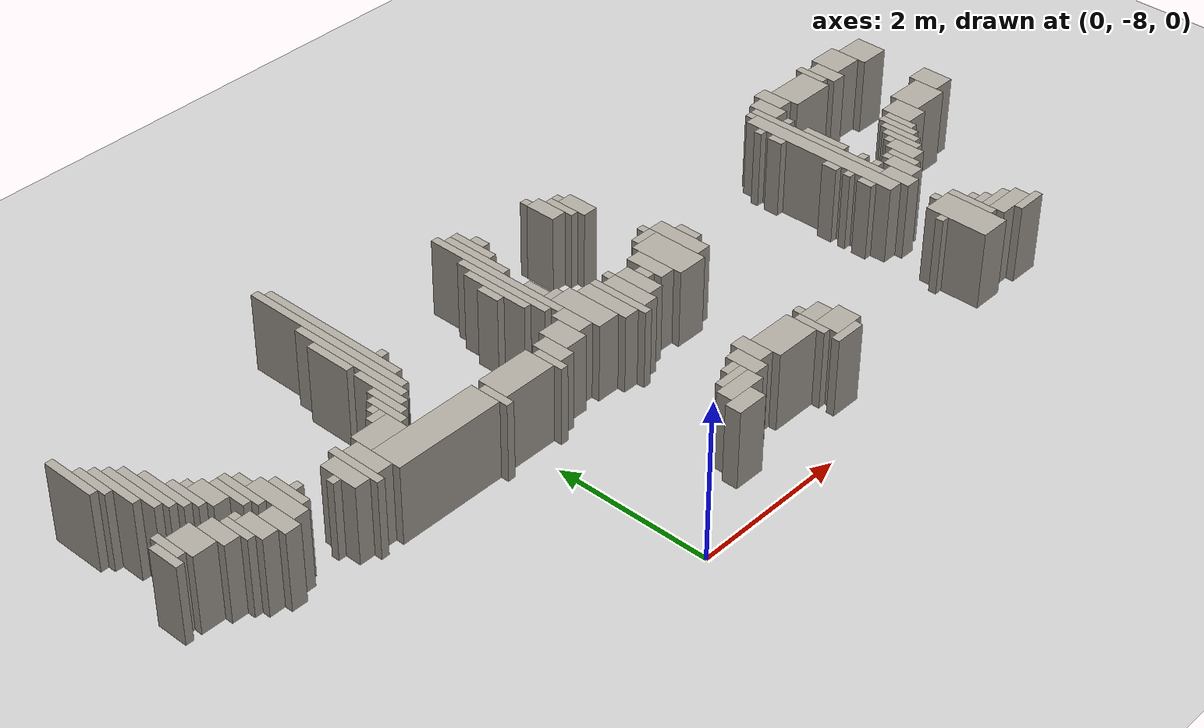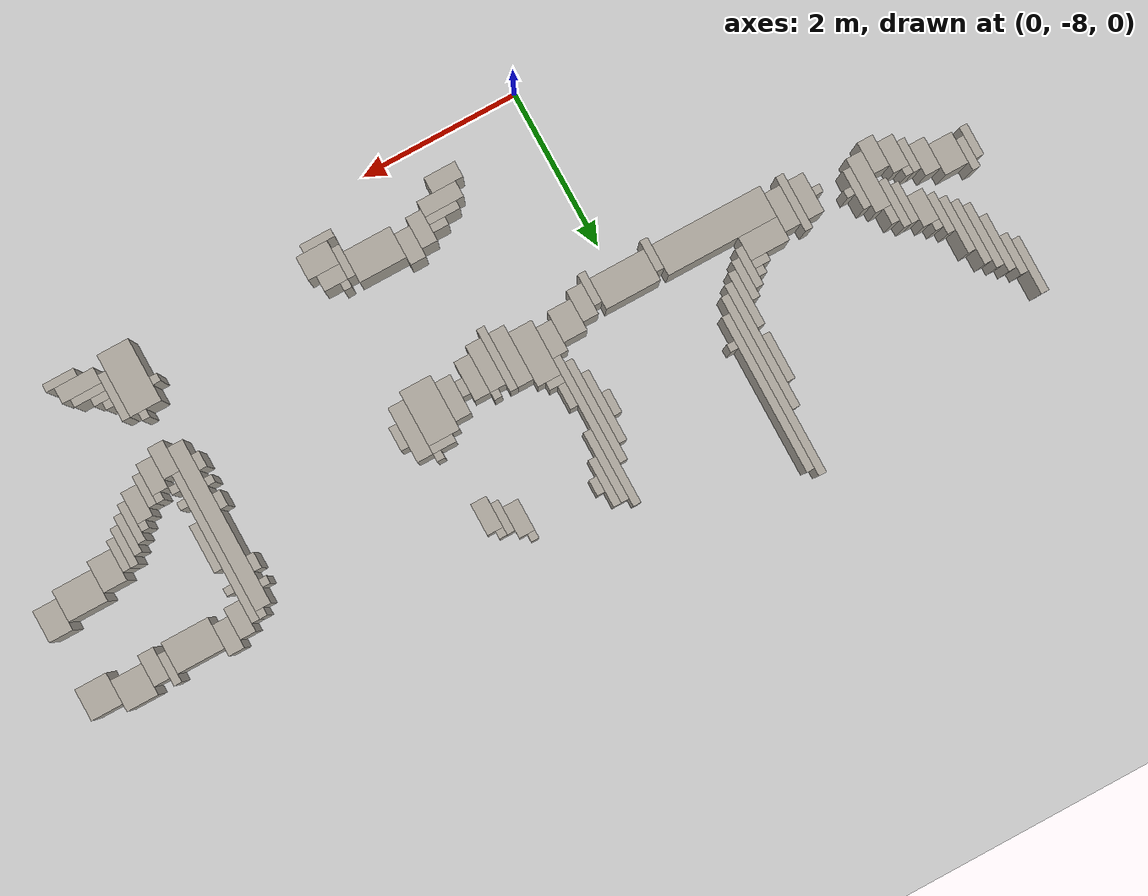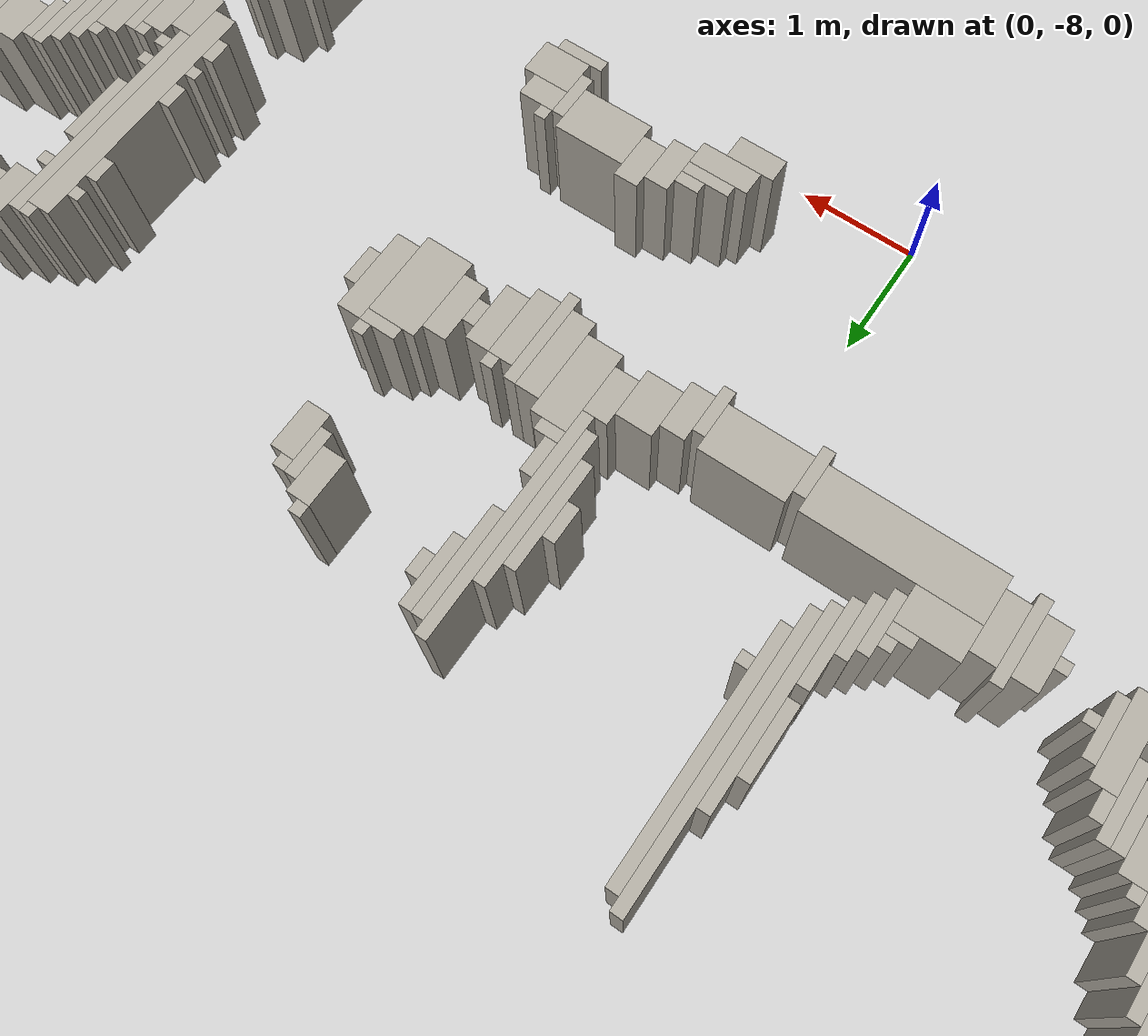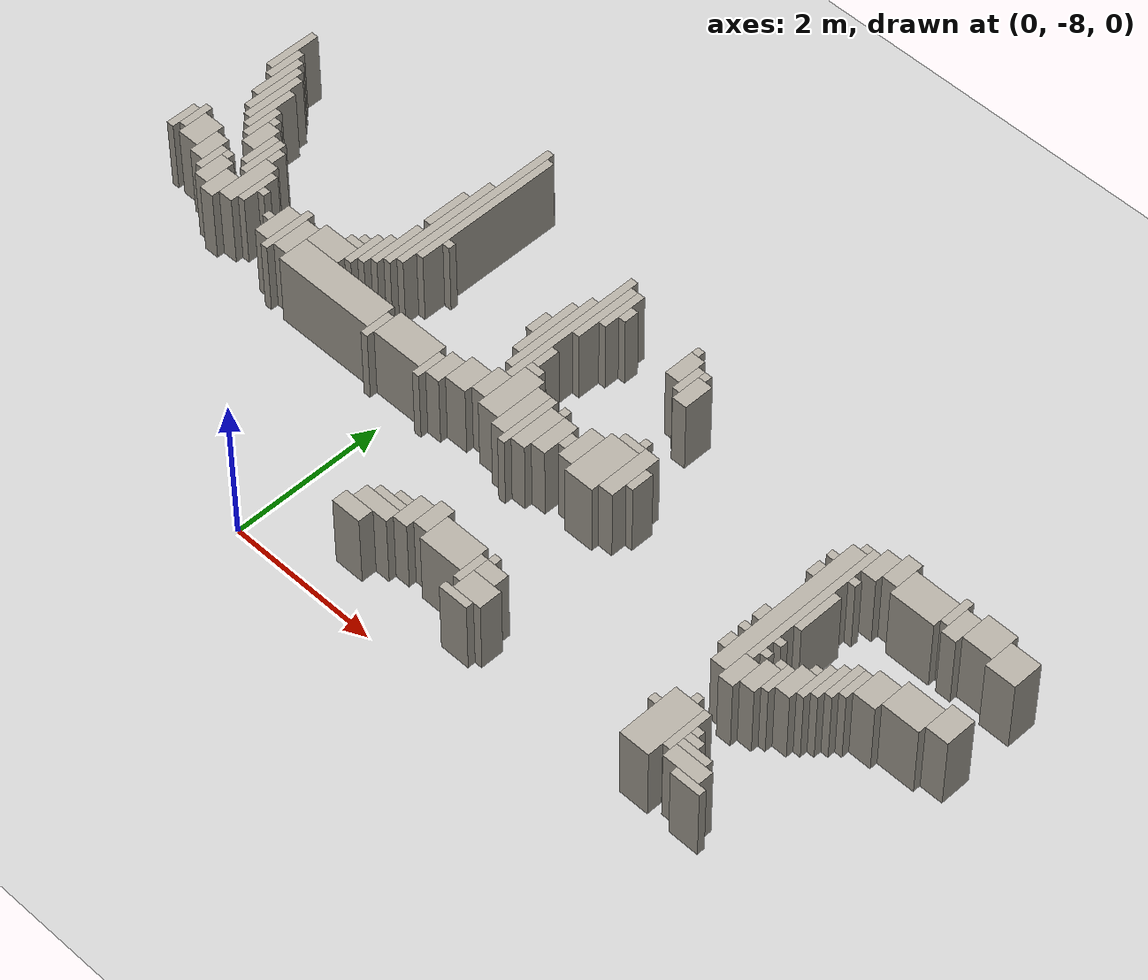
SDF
<sdf version="1.6">
 <world name="willow_office">
  <include><uri>model://sun</uri></include>
  <include><uri>model://ground_plane</uri></include>
  <model name="willow_office_walls">
   <static>true</static>
   <link name="w0007">
    <pose>1.215 -7.438 0.500 0 0 0</pose>
    <collision name="c"><geometry><box><size>0.400 0.200 1.000</size></box></geometry></collision>
    <visual name="v">
     <geometry><box><size>0.400 0.200 1.000</size></box></geometry>
     <material><ambient>0.68 0.66 0.62 1</ambient><diffuse>0.68 0.66 0.62 1</diffuse></material>
    </visual>
   </link>
   <link name="w0008">
    <pose>2.815 -7.488 0.500 0 0 0</pose>
    <collision name="c"><geometry><box><size>0.400 0.100 1.000</size></box></geometry></collision>
    <visual name="v">
     <geometry><box><size>0.400 0.100 1.000</size></box></geometry>
     <material><ambient>0.68 0.66 0.62 1</ambient><diffuse>0.68 0.66 0.62 1</diffuse></material>
    </visual>
   </link>
   <link name="w0009">
    <pose>5.415 -7.138 0.500 0 0 0</pose>
    <collision name="c"><geometry><box><size>0.400 0.800 1.000</size></box></geometry></collision>
    <visual name="v">
     <geometry><box><size>0.400 0.800 1.000</size></box></geometry>
     <material><ambient>0.68 0.66 0.62 1</ambient><diffuse>0.68 0.66 0.62 1</diffuse></material>
    </visual>
   </link>
   <link name="w0010">
    <pose>6.115 -7.488 0.500 0 0 0</pose>
    <collision name="c"><geometry><box><size>0.400 0.100 1.000</size></box></geometry></collision>
    <visual name="v">
     <geometry><box><size>0.400 0.100 1.000</size></box></geometry>
     <material><ambient>0.68 0.66 0.62 1</ambient><diffuse>0.68 0.66 0.62 1</diffuse></material>
    </visual>
   </link>
   <link name="w0016">
    <pose>2.915 -7.288 0.500 0 0 0</pose>
    <collision name="c"><geometry><box><size>0.400 0.300 1.000</size></box></geometry></collision>
    <visual name="v">
     <geometry><box><size>0.400 0.300 1.000</size></box></geometry>
     <material><ambient>0.68 0.66 0.62 1</ambient><diffuse>0.68 0.66 0.62 1</diffuse></material>
    </visual>
   </link>
   <link name="w0017">
    <pose>5.965 -7.338 0.500 0 0 0</pose>
    <collision name="c"><geometry><box><size>0.500 0.200 1.000</size></box></geometry></collision>
    <visual name="v">
     <geometry><box><size>0.500 0.200 1.000</size></box></geometry>
     <material><ambient>0.68 0.66 0.62 1</ambient><diffuse>0.68 0.66 0.62 1</diffuse></material>
    </visual>
   </link>
   <link name="w0025">
    <pose>1.365 -7.238 0.500 0 0 0</pose>
    <collision name="c"><geometry><box><size>0.500 0.200 1.000</size></box></geometry></collision>
    <visual name="v">
     <geometry><box><size>0.500 0.200 1.000</size></box></geometry>
     <material><ambient>0.68 0.66 0.62 1</ambient><diffuse>0.68 0.66 0.62 1</diffuse></material>
    </visual>
   </link>
   <link name="w0026">
    <pose>2.665 -7.138 0.500 0 0 0</pose>
    <collision name="c"><geometry><box><size>0.100 0.400 1.000</size></box></geometry></collision>
    <visual name="v">
     <geometry><box><size>0.100 0.400 1.000</size></box></geometry>
     <material><ambient>0.68 0.66 0.62 1</ambient><diffuse>0.68 0.66 0.62 1</diffuse></material>
    </visual>
   </link>
   <link name="w0027">
    <pose>5.665 -7.038 0.500 0 0 0</pose>
    <collision name="c"><geometry><box><size>0.100 0.600 1.000</size></box></geometry></collision>
    <visual name="v">
     <geometry><box><size>0.100 0.600 1.000</size></box></geometry>
     <material><ambient>0.68 0.66 0.62 1</ambient><diffuse>0.68 0.66 0.62 1</diffuse></material>
    </visual>
   </link>
   <link name="w0033">
    <pose>1.715 -7.038 0.500 0 0 0</pose>
    <collision name="c"><geometry><box><size>0.200 0.400 1.000</size></box></geometry></collision>
    <visual name="v">
     <geometry><box><size>0.200 0.400 1.000</size></box></geometry>
     <material><ambient>0.68 0.66 0.62 1</ambient><diffuse>0.68 0.66 0.62 1</diffuse></material>
    </visual>
   </link>
   <link name="w0034">
    <pose>2.315 -7.038 0.500 0 0 0</pose>
    <collision name="c"><geometry><box><size>0.600 0.400 1.000</size></box></geometry></collision>
    <visual name="v">
     <geometry><box><size>0.600 0.400 1.000</size></box></geometry>
     <material><ambient>0.68 0.66 0.62 1</ambient><diffuse>0.68 0.66 0.62 1</diffuse></material>
    </visual>
   </link>
   <link name="w0035">
    <pose>5.915 -7.188 0.500 0 0 0</pose>
    <collision name="c"><geometry><box><size>0.400 0.100 1.000</size></box></geometry></collision>
    <visual name="v">
     <geometry><box><size>0.400 0.100 1.000</size></box></geometry>
     <material><ambient>0.68 0.66 0.62 1</ambient><diffuse>0.68 0.66 0.62 1</diffuse></material>
    </visual>
   </link>
   <link name="w0042">
    <pose>1.415 -7.088 0.500 0 0 0</pose>
    <collision name="c"><geometry><box><size>0.400 0.100 1.000</size></box></geometry></collision>
    <visual name="v">
     <geometry><box><size>0.400 0.100 1.000</size></box></geometry>
     <material><ambient>0.68 0.66 0.62 1</ambient><diffuse>0.68 0.66 0.62 1</diffuse></material>
    </visual>
   </link>
   <link name="w0043">
    <pose>1.915 -6.938 0.500 0 0 0</pose>
    <collision name="c"><geometry><box><size>0.200 0.400 1.000</size></box></geometry></collision>
    <visual name="v">
     <geometry><box><size>0.200 0.400 1.000</size></box></geometry>
     <material><ambient>0.68 0.66 0.62 1</ambient><diffuse>0.68 0.66 0.62 1</diffuse></material>
    </visual>
   </link>
   <link name="w0044">
    <pose>2.865 -7.038 0.500 0 0 0</pose>
    <collision name="c"><geometry><box><size>0.300 0.200 1.000</size></box></geometry></collision>
    <visual name="v">
     <geometry><box><size>0.300 0.200 1.000</size></box></geometry>
     <material><ambient>0.68 0.66 0.62 1</ambient><diffuse>0.68 0.66 0.62 1</diffuse></material>
    </visual>
   </link>
   <link name="w0045">
    <pose>5.815 -7.088 0.500 0 0 0</pose>
    <collision name="c"><geometry><box><size>0.200 0.100 1.000</size></box></geometry></collision>
    <visual name="v">
     <geometry><box><size>0.200 0.100 1.000</size></box></geometry>
     <material><ambient>0.68 0.66 0.62 1</ambient><diffuse>0.68 0.66 0.62 1</diffuse></material>
    </visual>
   </link>
   <link name="w0051">
    <pose>1.515 -6.988 0.500 0 0 0</pose>
    <collision name="c"><geometry><box><size>0.200 0.100 1.000</size></box></geometry></collision>
    <visual name="v">
     <geometry><box><size>0.200 0.100 1.000</size></box></geometry>
     <material><ambient>0.68 0.66 0.62 1</ambient><diffuse>0.68 0.66 0.62 1</diffuse></material>
    </visual>
   </link>
   <link name="w0052">
    <pose>5.165 -6.988 0.500 0 0 0</pose>
    <collision name="c"><geometry><box><size>0.100 0.100 1.000</size></box></geometry></collision>
    <visual name="v">
     <geometry><box><size>0.100 0.100 1.000</size></box></geometry>
     <material><ambient>0.68 0.66 0.62 1</ambient><diffuse>0.68 0.66 0.62 1</diffuse></material>
    </visual>
   </link>
   <link name="w0053">
    <pose>5.765 -6.988 0.500 0 0 0</pose>
    <collision name="c"><geometry><box><size>0.100 0.100 1.000</size></box></geometry></collision>
    <visual name="v">
     <geometry><box><size>0.100 0.100 1.000</size></box></geometry>
     <material><ambient>0.68 0.66 0.62 1</ambient><diffuse>0.68 0.66 0.62 1</diffuse></material>
    </visual>
   </link>
   <link name="w0058">
    <pose>2.765 -6.888 0.500 0 0 0</pose>
    <collision name="c"><geometry><box><size>0.100 0.100 1.000</size></box></geometry></collision>
    <visual name="v">
     <geometry><box><size>0.100 0.100 1.000</size></box></geometry>
     <material><ambient>0.68 0.66 0.62 1</ambient><diffuse>0.68 0.66 0.62 1</diffuse></material>
    </visual>
   </link>
   <link name="w0063">
    <pose>5.465 -6.688 0.500 0 0 0</pose>
    <collision name="c"><geometry><box><size>0.100 0.100 1.000</size></box></geometry></collision>
    <visual name="v">
     <geometry><box><size>0.100 0.100 1.000</size></box></geometry>
     <material><ambient>0.68 0.66 0.62 1</ambient><diffuse>0.68 0.66 0.62 1</diffuse></material>
    </visual>
   </link>
   <link name="w0071">
    <pose>5.515 -6.138 0.500 0 0 0</pose>
    <collision name="c"><geometry><box><size>0.200 0.400 1.000</size></box></geometry></collision>
    <visual name="v">
     <geometry><box><size>0.200 0.400 1.000</size></box></geometry>
     <material><ambient>0.68 0.66 0.62 1</ambient><diffuse>0.68 0.66 0.62 1</diffuse></material>
    </visual>
   </link>
   <link name="w0072">
    <pose>5.315 -5.188 0.500 0 0 0</pose>
    <collision name="c"><geometry><box><size>0.200 2.100 1.000</size></box></geometry></collision>
    <visual name="v">
     <geometry><box><size>0.200 2.100 1.000</size></box></geometry>
     <material><ambient>0.68 0.66 0.62 1</ambient><diffuse>0.68 0.66 0.62 1</diffuse></material>
    </visual>
   </link>
   <link name="w0073">
    <pose>5.715 -6.038 0.500 0 0 0</pose>
    <collision name="c"><geometry><box><size>0.200 0.400 1.000</size></box></geometry></collision>
    <visual name="v">
     <geometry><box><size>0.200 0.400 1.000</size></box></geometry>
     <material><ambient>0.68 0.66 0.62 1</ambient><diffuse>0.68 0.66 0.62 1</diffuse></material>
    </visual>
   </link>
   <link name="w0076">
    <pose>5.865 -5.938 0.500 0 0 0</pose>
    <collision name="c"><geometry><box><size>0.100 0.400 1.000</size></box></geometry></collision>
    <visual name="v">
     <geometry><box><size>0.100 0.400 1.000</size></box></geometry>
     <material><ambient>0.68 0.66 0.62 1</ambient><diffuse>0.68 0.66 0.62 1</diffuse></material>
    </visual>
   </link>
   <link name="w0079">
    <pose>5.165 -5.938 0.500 0 0 0</pose>
    <collision name="c"><geometry><box><size>0.100 0.200 1.000</size></box></geometry></collision>
    <visual name="v">
     <geometry><box><size>0.100 0.200 1.000</size></box></geometry>
     <material><ambient>0.68 0.66 0.62 1</ambient><diffuse>0.68 0.66 0.62 1</diffuse></material>
    </visual>
   </link>
   <link name="w0080">
    <pose>6.015 -5.838 0.500 0 0 0</pose>
    <collision name="c"><geometry><box><size>0.200 0.400 1.000</size></box></geometry></collision>
    <visual name="v">
     <geometry><box><size>0.200 0.400 1.000</size></box></geometry>
     <material><ambient>0.68 0.66 0.62 1</ambient><diffuse>0.68 0.66 0.62 1</diffuse></material>
    </visual>
   </link>
   <link name="w0081">
    <pose>5.465 -4.988 0.500 0 0 0</pose>
    <collision name="c"><geometry><box><size>0.100 1.900 1.000</size></box></geometry></collision>
    <visual name="v">
     <geometry><box><size>0.100 1.900 1.000</size></box></geometry>
     <material><ambient>0.68 0.66 0.62 1</ambient><diffuse>0.68 0.66 0.62 1</diffuse></material>
    </visual>
   </link>
   <link name="w0082">
    <pose>6.165 -5.688 0.500 0 0 0</pose>
    <collision name="c"><geometry><box><size>0.100 0.500 1.000</size></box></geometry></collision>
    <visual name="v">
     <geometry><box><size>0.100 0.500 1.000</size></box></geometry>
     <material><ambient>0.68 0.66 0.62 1</ambient><diffuse>0.68 0.66 0.62 1</diffuse></material>
    </visual>
   </link>
   <link name="w0086">
    <pose>5.565 -5.788 0.500 0 0 0</pose>
    <collision name="c"><geometry><box><size>0.100 0.100 1.000</size></box></geometry></collision>
    <visual name="v">
     <geometry><box><size>0.100 0.100 1.000</size></box></geometry>
     <material><ambient>0.68 0.66 0.62 1</ambient><diffuse>0.68 0.66 0.62 1</diffuse></material>
    </visual>
   </link>
   <link name="w0087">
    <pose>5.765 -5.788 0.500 0 0 0</pose>
    <collision name="c"><geometry><box><size>0.100 0.100 1.000</size></box></geometry></collision>
    <visual name="v">
     <geometry><box><size>0.100 0.100 1.000</size></box></geometry>
     <material><ambient>0.68 0.66 0.62 1</ambient><diffuse>0.68 0.66 0.62 1</diffuse></material>
    </visual>
   </link>
   <link name="w0088">
    <pose>6.265 -5.588 0.500 0 0 0</pose>
    <collision name="c"><geometry><box><size>0.100 0.500 1.000</size></box></geometry></collision>
    <visual name="v">
     <geometry><box><size>0.100 0.500 1.000</size></box></geometry>
     <material><ambient>0.68 0.66 0.62 1</ambient><diffuse>0.68 0.66 0.62 1</diffuse></material>
    </visual>
   </link>
   <link name="w0091">
    <pose>-0.435 -5.538 0.500 0 0 0</pose>
    <collision name="c"><geometry><box><size>0.100 0.400 1.000</size></box></geometry></collision>
    <visual name="v">
     <geometry><box><size>0.100 0.400 1.000</size></box></geometry>
     <material><ambient>0.68 0.66 0.62 1</ambient><diffuse>0.68 0.66 0.62 1</diffuse></material>
    </visual>
   </link>
   <link name="w0092">
    <pose>0.365 -5.538 0.500 0 0 0</pose>
    <collision name="c"><geometry><box><size>0.100 0.400 1.000</size></box></geometry></collision>
    <visual name="v">
     <geometry><box><size>0.100 0.400 1.000</size></box></geometry>
     <material><ambient>0.68 0.66 0.62 1</ambient><diffuse>0.68 0.66 0.62 1</diffuse></material>
    </visual>
   </link>
   <link name="w0093">
    <pose>1.665 -5.338 0.500 0 0 0</pose>
    <collision name="c"><geometry><box><size>0.100 0.800 1.000</size></box></geometry></collision>
    <visual name="v">
     <geometry><box><size>0.100 0.800 1.000</size></box></geometry>
     <material><ambient>0.68 0.66 0.62 1</ambient><diffuse>0.68 0.66 0.62 1</diffuse></material>
    </visual>
   </link>
   <link name="w0094">
    <pose>5.165 -5.688 0.500 0 0 0</pose>
    <collision name="c"><geometry><box><size>0.100 0.100 1.000</size></box></geometry></collision>
    <visual name="v">
     <geometry><box><size>0.100 0.100 1.000</size></box></geometry>
     <material><ambient>0.68 0.66 0.62 1</ambient><diffuse>0.68 0.66 0.62 1</diffuse></material>
    </visual>
   </link>
   <link name="w0095">
    <pose>6.365 -5.488 0.500 0 0 0</pose>
    <collision name="c"><geometry><box><size>0.100 0.500 1.000</size></box></geometry></collision>
    <visual name="v">
     <geometry><box><size>0.100 0.500 1.000</size></box></geometry>
     <material><ambient>0.68 0.66 0.62 1</ambient><diffuse>0.68 0.66 0.62 1</diffuse></material>
    </visual>
   </link>
   <link name="w0097">
    <pose>-2.135 -5.288 0.500 0 0 0</pose>
    <collision name="c"><geometry><box><size>0.100 0.700 1.000</size></box></geometry></collision>
    <visual name="v">
     <geometry><box><size>0.100 0.700 1.000</size></box></geometry>
     <material><ambient>0.68 0.66 0.62 1</ambient><diffuse>0.68 0.66 0.62 1</diffuse></material>
    </visual>
   </link>
   <link name="w0098">
    <pose>-1.185 -5.438 0.500 0 0 0</pose>
    <collision name="c"><geometry><box><size>1.400 0.400 1.000</size></box></geometry></collision>
    <visual name="v">
     <geometry><box><size>1.400 0.400 1.000</size></box></geometry>
     <material><ambient>0.68 0.66 0.62 1</ambient><diffuse>0.68 0.66 0.62 1</diffuse></material>
    </visual>
   </link>
   <link name="w0099">
    <pose>-0.035 -5.438 0.500 0 0 0</pose>
    <collision name="c"><geometry><box><size>0.700 0.400 1.000</size></box></geometry></collision>
    <visual name="v">
     <geometry><box><size>0.700 0.400 1.000</size></box></geometry>
     <material><ambient>0.68 0.66 0.62 1</ambient><diffuse>0.68 0.66 0.62 1</diffuse></material>
    </visual>
   </link>
   <link name="w0100">
    <pose>0.515 -5.438 0.500 0 0 0</pose>
    <collision name="c"><geometry><box><size>0.200 0.400 1.000</size></box></geometry></collision>
    <visual name="v">
     <geometry><box><size>0.200 0.400 1.000</size></box></geometry>
     <material><ambient>0.68 0.66 0.62 1</ambient><diffuse>0.68 0.66 0.62 1</diffuse></material>
    </visual>
   </link>
   <link name="w0101">
    <pose>1.515 -5.288 0.500 0 0 0</pose>
    <collision name="c"><geometry><box><size>0.200 0.700 1.000</size></box></geometry></collision>
    <visual name="v">
     <geometry><box><size>0.200 0.700 1.000</size></box></geometry>
     <material><ambient>0.68 0.66 0.62 1</ambient><diffuse>0.68 0.66 0.62 1</diffuse></material>
    </visual>
   </link>
   <link name="w0102">
    <pose>1.815 -5.338 0.500 0 0 0</pose>
    <collision name="c"><geometry><box><size>0.200 0.600 1.000</size></box></geometry></collision>
    <visual name="v">
     <geometry><box><size>0.200 0.600 1.000</size></box></geometry>
     <material><ambient>0.68 0.66 0.62 1</ambient><diffuse>0.68 0.66 0.62 1</diffuse></material>
    </visual>
   </link>
   <link name="w0103">
    <pose>5.565 -5.588 0.500 0 0 0</pose>
    <collision name="c"><geometry><box><size>0.100 0.100 1.000</size></box></geometry></collision>
    <visual name="v">
     <geometry><box><size>0.100 0.100 1.000</size></box></geometry>
     <material><ambient>0.68 0.66 0.62 1</ambient><diffuse>0.68 0.66 0.62 1</diffuse></material>
    </visual>
   </link>
   <link name="w0104">
    <pose>6.065 -5.588 0.500 0 0 0</pose>
    <collision name="c"><geometry><box><size>0.100 0.100 1.000</size></box></geometry></collision>
    <visual name="v">
     <geometry><box><size>0.100 0.100 1.000</size></box></geometry>
     <material><ambient>0.68 0.66 0.62 1</ambient><diffuse>0.68 0.66 0.62 1</diffuse></material>
    </visual>
   </link>
   <link name="w0105">
    <pose>6.465 -5.438 0.500 0 0 0</pose>
    <collision name="c"><geometry><box><size>0.100 0.400 1.000</size></box></geometry></collision>
    <visual name="v">
     <geometry><box><size>0.100 0.400 1.000</size></box></geometry>
     <material><ambient>0.68 0.66 0.62 1</ambient><diffuse>0.68 0.66 0.62 1</diffuse></material>
    </visual>
   </link>
   <link name="w0107">
    <pose>-3.185 -5.338 0.500 0 0 0</pose>
    <collision name="c"><geometry><box><size>0.200 0.400 1.000</size></box></geometry></collision>
    <visual name="v">
     <geometry><box><size>0.200 0.400 1.000</size></box></geometry>
     <material><ambient>0.68 0.66 0.62 1</ambient><diffuse>0.68 0.66 0.62 1</diffuse></material>
    </visual>
   </link>
   <link name="w0108">
    <pose>-2.285 -5.288 0.500 0 0 0</pose>
    <collision name="c"><geometry><box><size>0.200 0.500 1.000</size></box></geometry></collision>
    <visual name="v">
     <geometry><box><size>0.200 0.500 1.000</size></box></geometry>
     <material><ambient>0.68 0.66 0.62 1</ambient><diffuse>0.68 0.66 0.62 1</diffuse></material>
    </visual>
   </link>
   <link name="w0109">
    <pose>-1.985 -5.288 0.500 0 0 0</pose>
    <collision name="c"><geometry><box><size>0.200 0.500 1.000</size></box></geometry></collision>
    <visual name="v">
     <geometry><box><size>0.200 0.500 1.000</size></box></geometry>
     <material><ambient>0.68 0.66 0.62 1</ambient><diffuse>0.68 0.66 0.62 1</diffuse></material>
    </visual>
   </link>
   <link name="w0110">
    <pose>0.765 -5.338 0.500 0 0 0</pose>
    <collision name="c"><geometry><box><size>0.300 0.400 1.000</size></box></geometry></collision>
    <visual name="v">
     <geometry><box><size>0.300 0.400 1.000</size></box></geometry>
     <material><ambient>0.68 0.66 0.62 1</ambient><diffuse>0.68 0.66 0.62 1</diffuse></material>
    </visual>
   </link>
   <link name="w0111">
    <pose>1.265 -5.188 0.500 0 0 0</pose>
    <collision name="c"><geometry><box><size>0.300 0.700 1.000</size></box></geometry></collision>
    <visual name="v">
     <geometry><box><size>0.300 0.700 1.000</size></box></geometry>
     <material><ambient>0.68 0.66 0.62 1</ambient><diffuse>0.68 0.66 0.62 1</diffuse></material>
    </visual>
   </link>
   <link name="w0112">
    <pose>2.015 -5.288 0.500 0 0 0</pose>
    <collision name="c"><geometry><box><size>0.200 0.500 1.000</size></box></geometry></collision>
    <visual name="v">
     <geometry><box><size>0.200 0.500 1.000</size></box></geometry>
     <material><ambient>0.68 0.66 0.62 1</ambient><diffuse>0.68 0.66 0.62 1</diffuse></material>
    </visual>
   </link>
   <link name="w0113">
    <pose>2.615 -5.188 0.500 0 0 0</pose>
    <collision name="c"><geometry><box><size>0.400 0.700 1.000</size></box></geometry></collision>
    <visual name="v">
     <geometry><box><size>0.400 0.700 1.000</size></box></geometry>
     <material><ambient>0.68 0.66 0.62 1</ambient><diffuse>0.68 0.66 0.62 1</diffuse></material>
    </visual>
   </link>
   <link name="w0114">
    <pose>5.165 -5.438 0.500 0 0 0</pose>
    <collision name="c"><geometry><box><size>0.100 0.200 1.000</size></box></geometry></collision>
    <visual name="v">
     <geometry><box><size>0.100 0.200 1.000</size></box></geometry>
     <material><ambient>0.68 0.66 0.62 1</ambient><diffuse>0.68 0.66 0.62 1</diffuse></material>
    </visual>
   </link>
   <link name="w0115">
    <pose>6.665 -5.338 0.500 0 0 0</pose>
    <collision name="c"><geometry><box><size>0.300 0.400 1.000</size></box></geometry></collision>
    <visual name="v">
     <geometry><box><size>0.300 0.400 1.000</size></box></geometry>
     <material><ambient>0.68 0.66 0.62 1</ambient><diffuse>0.68 0.66 0.62 1</diffuse></material>
    </visual>
   </link>
   <link name="w0120">
    <pose>-3.385 -5.238 0.500 0 0 0</pose>
    <collision name="c"><geometry><box><size>0.200 0.400 1.000</size></box></geometry></collision>
    <visual name="v">
     <geometry><box><size>0.200 0.400 1.000</size></box></geometry>
     <material><ambient>0.68 0.66 0.62 1</ambient><diffuse>0.68 0.66 0.62 1</diffuse></material>
    </visual>
   </link>
   <link name="w0121">
    <pose>-2.985 -5.088 0.500 0 0 0</pose>
    <collision name="c"><geometry><box><size>0.200 0.700 1.000</size></box></geometry></collision>
    <visual name="v">
     <geometry><box><size>0.200 0.700 1.000</size></box></geometry>
     <material><ambient>0.68 0.66 0.62 1</ambient><diffuse>0.68 0.66 0.62 1</diffuse></material>
    </visual>
   </link>
   <link name="w0122">
    <pose>1.015 -5.238 0.500 0 0 0</pose>
    <collision name="c"><geometry><box><size>0.200 0.400 1.000</size></box></geometry></collision>
    <visual name="v">
     <geometry><box><size>0.200 0.400 1.000</size></box></geometry>
     <material><ambient>0.68 0.66 0.62 1</ambient><diffuse>0.68 0.66 0.62 1</diffuse></material>
    </visual>
   </link>
   <link name="w0123">
    <pose>2.315 -5.188 0.500 0 0 0</pose>
    <collision name="c"><geometry><box><size>0.200 0.500 1.000</size></box></geometry></collision>
    <visual name="v">
     <geometry><box><size>0.200 0.500 1.000</size></box></geometry>
     <material><ambient>0.68 0.66 0.62 1</ambient><diffuse>0.68 0.66 0.62 1</diffuse></material>
    </visual>
   </link>
   <link name="w0124">
    <pose>2.915 -5.088 0.500 0 0 0</pose>
    <collision name="c"><geometry><box><size>0.200 0.700 1.000</size></box></geometry></collision>
    <visual name="v">
     <geometry><box><size>0.200 0.700 1.000</size></box></geometry>
     <material><ambient>0.68 0.66 0.62 1</ambient><diffuse>0.68 0.66 0.62 1</diffuse></material>
    </visual>
   </link>
   <link name="w0125">
    <pose>7.065 -5.238 0.500 0 0 0</pose>
    <collision name="c"><geometry><box><size>0.500 0.400 1.000</size></box></geometry></collision>
    <visual name="v">
     <geometry><box><size>0.500 0.400 1.000</size></box></geometry>
     <material><ambient>0.68 0.66 0.62 1</ambient><diffuse>0.68 0.66 0.62 1</diffuse></material>
    </visual>
   </link>
   <link name="w0131">
    <pose>-3.535 -5.138 0.500 0 0 0</pose>
    <collision name="c"><geometry><box><size>0.100 0.400 1.000</size></box></geometry></collision>
    <visual name="v">
     <geometry><box><size>0.100 0.400 1.000</size></box></geometry>
     <material><ambient>0.68 0.66 0.62 1</ambient><diffuse>0.68 0.66 0.62 1</diffuse></material>
    </visual>
   </link>
   <link name="w0132">
    <pose>-2.835 -5.088 0.500 0 0 0</pose>
    <collision name="c"><geometry><box><size>0.100 0.500 1.000</size></box></geometry></collision>
    <visual name="v">
     <geometry><box><size>0.100 0.500 1.000</size></box></geometry>
     <material><ambient>0.68 0.66 0.62 1</ambient><diffuse>0.68 0.66 0.62 1</diffuse></material>
    </visual>
   </link>
   <link name="w0133">
    <pose>-2.435 -5.288 0.500 0 0 0</pose>
    <collision name="c"><geometry><box><size>0.100 0.100 1.000</size></box></geometry></collision>
    <visual name="v">
     <geometry><box><size>0.100 0.100 1.000</size></box></geometry>
     <material><ambient>0.68 0.66 0.62 1</ambient><diffuse>0.68 0.66 0.62 1</diffuse></material>
    </visual>
   </link>
   <link name="w0134">
    <pose>2.165 -5.238 0.500 0 0 0</pose>
    <collision name="c"><geometry><box><size>0.100 0.200 1.000</size></box></geometry></collision>
    <visual name="v">
     <geometry><box><size>0.100 0.200 1.000</size></box></geometry>
     <material><ambient>0.68 0.66 0.62 1</ambient><diffuse>0.68 0.66 0.62 1</diffuse></material>
    </visual>
   </link>
   <link name="w0135">
    <pose>5.565 -5.038 0.500 0 0 0</pose>
    <collision name="c"><geometry><box><size>0.100 0.600 1.000</size></box></geometry></collision>
    <visual name="v">
     <geometry><box><size>0.100 0.600 1.000</size></box></geometry>
     <material><ambient>0.68 0.66 0.62 1</ambient><diffuse>0.68 0.66 0.62 1</diffuse></material>
    </visual>
   </link>
   <link name="w0136">
    <pose>7.465 -5.138 0.500 0 0 0</pose>
    <collision name="c"><geometry><box><size>0.300 0.400 1.000</size></box></geometry></collision>
    <visual name="v">
     <geometry><box><size>0.300 0.400 1.000</size></box></geometry>
     <material><ambient>0.68 0.66 0.62 1</ambient><diffuse>0.68 0.66 0.62 1</diffuse></material>
    </visual>
   </link>
   <link name="w0141">
    <pose>-3.685 -5.038 0.500 0 0 0</pose>
    <collision name="c"><geometry><box><size>0.200 0.400 1.000</size></box></geometry></collision>
    <visual name="v">
     <geometry><box><size>0.200 0.400 1.000</size></box></geometry>
     <material><ambient>0.68 0.66 0.62 1</ambient><diffuse>0.68 0.66 0.62 1</diffuse></material>
    </visual>
   </link>
   <link name="w0142">
    <pose>-1.635 -5.088 0.500 0 0 0</pose>
    <collision name="c"><geometry><box><size>0.500 0.300 1.000</size></box></geometry></collision>
    <visual name="v">
     <geometry><box><size>0.500 0.300 1.000</size></box></geometry>
     <material><ambient>0.68 0.66 0.62 1</ambient><diffuse>0.68 0.66 0.62 1</diffuse></material>
    </visual>
   </link>
   <link name="w0143">
    <pose>3.065 -5.088 0.500 0 0 0</pose>
    <collision name="c"><geometry><box><size>0.100 0.300 1.000</size></box></geometry></collision>
    <visual name="v">
     <geometry><box><size>0.100 0.300 1.000</size></box></geometry>
     <material><ambient>0.68 0.66 0.62 1</ambient><diffuse>0.68 0.66 0.62 1</diffuse></material>
    </visual>
   </link>
   <link name="w0155">
    <pose>-4.235 -4.938 0.500 0 0 0</pose>
    <collision name="c"><geometry><box><size>0.100 0.400 1.000</size></box></geometry></collision>
    <visual name="v">
     <geometry><box><size>0.100 0.400 1.000</size></box></geometry>
     <material><ambient>0.68 0.66 0.62 1</ambient><diffuse>0.68 0.66 0.62 1</diffuse></material>
    </visual>
   </link>
   <link name="w0156">
    <pose>-3.935 -4.938 0.500 0 0 0</pose>
    <collision name="c"><geometry><box><size>0.300 0.400 1.000</size></box></geometry></collision>
    <visual name="v">
     <geometry><box><size>0.300 0.400 1.000</size></box></geometry>
     <material><ambient>0.68 0.66 0.62 1</ambient><diffuse>0.68 0.66 0.62 1</diffuse></material>
    </visual>
   </link>
   <link name="w0157">
    <pose>-2.735 -5.088 0.500 0 0 0</pose>
    <collision name="c"><geometry><box><size>0.100 0.100 1.000</size></box></geometry></collision>
    <visual name="v">
     <geometry><box><size>0.100 0.100 1.000</size></box></geometry>
     <material><ambient>0.68 0.66 0.62 1</ambient><diffuse>0.68 0.66 0.62 1</diffuse></material>
    </visual>
   </link>
   <link name="w0158">
    <pose>-1.335 -4.888 0.500 0 0 0</pose>
    <collision name="c"><geometry><box><size>0.100 0.500 1.000</size></box></geometry></collision>
    <visual name="v">
     <geometry><box><size>0.100 0.500 1.000</size></box></geometry>
     <material><ambient>0.68 0.66 0.62 1</ambient><diffuse>0.68 0.66 0.62 1</diffuse></material>
    </visual>
   </link>
   <link name="w0170">
    <pose>-4.135 -4.838 0.500 0 0 0</pose>
    <collision name="c"><geometry><box><size>0.100 0.400 1.000</size></box></geometry></collision>
    <visual name="v">
     <geometry><box><size>0.100 0.400 1.000</size></box></geometry>
     <material><ambient>0.68 0.66 0.62 1</ambient><diffuse>0.68 0.66 0.62 1</diffuse></material>
    </visual>
   </link>
   <link name="w0171">
    <pose>-3.435 -4.988 0.500 0 0 0</pose>
    <collision name="c"><geometry><box><size>0.100 0.100 1.000</size></box></geometry></collision>
    <visual name="v">
     <geometry><box><size>0.100 0.100 1.000</size></box></geometry>
     <material><ambient>0.68 0.66 0.62 1</ambient><diffuse>0.68 0.66 0.62 1</diffuse></material>
    </visual>
   </link>
   <link name="w0172">
    <pose>-3.135 -4.738 0.500 0 0 0</pose>
    <collision name="c"><geometry><box><size>0.100 0.600 1.000</size></box></geometry></collision>
    <visual name="v">
     <geometry><box><size>0.100 0.600 1.000</size></box></geometry>
     <material><ambient>0.68 0.66 0.62 1</ambient><diffuse>0.68 0.66 0.62 1</diffuse></material>
    </visual>
   </link>
   <link name="w0173">
    <pose>-1.235 -4.788 0.500 0 0 0</pose>
    <collision name="c"><geometry><box><size>0.100 0.500 1.000</size></box></geometry></collision>
    <visual name="v">
     <geometry><box><size>0.100 0.500 1.000</size></box></geometry>
     <material><ambient>0.68 0.66 0.62 1</ambient><diffuse>0.68 0.66 0.62 1</diffuse></material>
    </visual>
   </link>
   <link name="w0174">
    <pose>1.065 -4.088 0.500 0 0 0</pose>
    <collision name="c"><geometry><box><size>0.100 1.900 1.000</size></box></geometry></collision>
    <visual name="v">
     <geometry><box><size>0.100 1.900 1.000</size></box></geometry>
     <material><ambient>0.68 0.66 0.62 1</ambient><diffuse>0.68 0.66 0.62 1</diffuse></material>
    </visual>
   </link>
   <link name="w0175">
    <pose>1.865 -4.988 0.500 0 0 0</pose>
    <collision name="c"><geometry><box><size>0.100 0.100 1.000</size></box></geometry></collision>
    <visual name="v">
     <geometry><box><size>0.100 0.100 1.000</size></box></geometry>
     <material><ambient>0.68 0.66 0.62 1</ambient><diffuse>0.68 0.66 0.62 1</diffuse></material>
    </visual>
   </link>
   <link name="w0180">
    <pose>-3.235 -4.688 0.500 0 0 0</pose>
    <collision name="c"><geometry><box><size>0.100 0.500 1.000</size></box></geometry></collision>
    <visual name="v">
     <geometry><box><size>0.100 0.500 1.000</size></box></geometry>
     <material><ambient>0.68 0.66 0.62 1</ambient><diffuse>0.68 0.66 0.62 1</diffuse></material>
    </visual>
   </link>
   <link name="w0181">
    <pose>-1.485 -4.888 0.500 0 0 0</pose>
    <collision name="c"><geometry><box><size>0.200 0.100 1.000</size></box></geometry></collision>
    <visual name="v">
     <geometry><box><size>0.200 0.100 1.000</size></box></geometry>
     <material><ambient>0.68 0.66 0.62 1</ambient><diffuse>0.68 0.66 0.62 1</diffuse></material>
    </visual>
   </link>
   <link name="w0182">
    <pose>-1.135 -4.588 0.500 0 0 0</pose>
    <collision name="c"><geometry><box><size>0.100 0.700 1.000</size></box></geometry></collision>
    <visual name="v">
     <geometry><box><size>0.100 0.700 1.000</size></box></geometry>
     <material><ambient>0.68 0.66 0.62 1</ambient><diffuse>0.68 0.66 0.62 1</diffuse></material>
    </visual>
   </link>
   <link name="w0183">
    <pose>0.965 -4.288 0.500 0 0 0</pose>
    <collision name="c"><geometry><box><size>0.100 1.300 1.000</size></box></geometry></collision>
    <visual name="v">
     <geometry><box><size>0.100 1.300 1.000</size></box></geometry>
     <material><ambient>0.68 0.66 0.62 1</ambient><diffuse>0.68 0.66 0.62 1</diffuse></material>
    </visual>
   </link>
   <link name="w0188">
    <pose>-1.435 -4.788 0.500 0 0 0</pose>
    <collision name="c"><geometry><box><size>0.100 0.100 1.000</size></box></geometry></collision>
    <visual name="v">
     <geometry><box><size>0.100 0.100 1.000</size></box></geometry>
     <material><ambient>0.68 0.66 0.62 1</ambient><diffuse>0.68 0.66 0.62 1</diffuse></material>
    </visual>
   </link>
   <link name="w0189">
    <pose>-1.035 -4.038 0.500 0 0 0</pose>
    <collision name="c"><geometry><box><size>0.100 1.600 1.000</size></box></geometry></collision>
    <visual name="v">
     <geometry><box><size>0.100 1.600 1.000</size></box></geometry>
     <material><ambient>0.68 0.66 0.62 1</ambient><diffuse>0.68 0.66 0.62 1</diffuse></material>
    </visual>
   </link>
   <link name="w0190">
    <pose>1.215 -4.788 0.500 0 0 0</pose>
    <collision name="c"><geometry><box><size>0.200 0.100 1.000</size></box></geometry></collision>
    <visual name="v">
     <geometry><box><size>0.200 0.100 1.000</size></box></geometry>
     <material><ambient>0.68 0.66 0.62 1</ambient><diffuse>0.68 0.66 0.62 1</diffuse></material>
    </visual>
   </link>
   <link name="w0191">
    <pose>2.665 -4.788 0.500 0 0 0</pose>
    <collision name="c"><geometry><box><size>0.300 0.100 1.000</size></box></geometry></collision>
    <visual name="v">
     <geometry><box><size>0.300 0.100 1.000</size></box></geometry>
     <material><ambient>0.68 0.66 0.62 1</ambient><diffuse>0.68 0.66 0.62 1</diffuse></material>
    </visual>
   </link>
   <link name="w0196">
    <pose>-3.385 -4.538 0.500 0 0 0</pose>
    <collision name="c"><geometry><box><size>0.200 0.400 1.000</size></box></geometry></collision>
    <visual name="v">
     <geometry><box><size>0.200 0.400 1.000</size></box></geometry>
     <material><ambient>0.68 0.66 0.62 1</ambient><diffuse>0.68 0.66 0.62 1</diffuse></material>
    </visual>
   </link>
   <link name="w0197">
    <pose>-3.035 -4.638 0.500 0 0 0</pose>
    <collision name="c"><geometry><box><size>0.100 0.200 1.000</size></box></geometry></collision>
    <visual name="v">
     <geometry><box><size>0.100 0.200 1.000</size></box></geometry>
     <material><ambient>0.68 0.66 0.62 1</ambient><diffuse>0.68 0.66 0.62 1</diffuse></material>
    </visual>
   </link>
   <link name="w0198">
    <pose>-0.935 -3.588 0.500 0 0 0</pose>
    <collision name="c"><geometry><box><size>0.100 2.300 1.000</size></box></geometry></collision>
    <visual name="v">
     <geometry><box><size>0.100 2.300 1.000</size></box></geometry>
     <material><ambient>0.68 0.66 0.62 1</ambient><diffuse>0.68 0.66 0.62 1</diffuse></material>
    </visual>
   </link>
   <link name="w0199">
    <pose>0.865 -4.288 0.500 0 0 0</pose>
    <collision name="c"><geometry><box><size>0.100 0.900 1.000</size></box></geometry></collision>
    <visual name="v">
     <geometry><box><size>0.100 0.900 1.000</size></box></geometry>
     <material><ambient>0.68 0.66 0.62 1</ambient><diffuse>0.68 0.66 0.62 1</diffuse></material>
    </visual>
   </link>
   <link name="w0200">
    <pose>1.165 -4.588 0.500 0 0 0</pose>
    <collision name="c"><geometry><box><size>0.100 0.300 1.000</size></box></geometry></collision>
    <visual name="v">
     <geometry><box><size>0.100 0.300 1.000</size></box></geometry>
     <material><ambient>0.68 0.66 0.62 1</ambient><diffuse>0.68 0.66 0.62 1</diffuse></material>
    </visual>
   </link>
   <link name="w0201">
    <pose>2.765 -4.688 0.500 0 0 0</pose>
    <collision name="c"><geometry><box><size>0.100 0.100 1.000</size></box></geometry></collision>
    <visual name="v">
     <geometry><box><size>0.100 0.100 1.000</size></box></geometry>
     <material><ambient>0.68 0.66 0.62 1</ambient><diffuse>0.68 0.66 0.62 1</diffuse></material>
    </visual>
   </link>
   <link name="w0202">
    <pose>5.165 -4.638 0.500 0 0 0</pose>
    <collision name="c"><geometry><box><size>0.100 0.200 1.000</size></box></geometry></collision>
    <visual name="v">
     <geometry><box><size>0.100 0.200 1.000</size></box></geometry>
     <material><ambient>0.68 0.66 0.62 1</ambient><diffuse>0.68 0.66 0.62 1</diffuse></material>
    </visual>
   </link>
   <link name="w0210">
    <pose>-3.535 -4.388 0.500 0 0 0</pose>
    <collision name="c"><geometry><box><size>0.100 0.500 1.000</size></box></geometry></collision>
    <visual name="v">
     <geometry><box><size>0.100 0.500 1.000</size></box></geometry>
     <material><ambient>0.68 0.66 0.62 1</ambient><diffuse>0.68 0.66 0.62 1</diffuse></material>
    </visual>
   </link>
   <link name="w0216">
    <pose>-3.635 -4.188 0.500 0 0 0</pose>
    <collision name="c"><geometry><box><size>0.100 0.700 1.000</size></box></geometry></collision>
    <visual name="v">
     <geometry><box><size>0.100 0.700 1.000</size></box></geometry>
     <material><ambient>0.68 0.66 0.62 1</ambient><diffuse>0.68 0.66 0.62 1</diffuse></material>
    </visual>
   </link>
   <link name="w0217">
    <pose>-0.835 -3.538 0.500 0 0 0</pose>
    <collision name="c"><geometry><box><size>0.100 2.000 1.000</size></box></geometry></collision>
    <visual name="v">
     <geometry><box><size>0.100 2.000 1.000</size></box></geometry>
     <material><ambient>0.68 0.66 0.62 1</ambient><diffuse>0.68 0.66 0.62 1</diffuse></material>
    </visual>
   </link>
   <link name="w0218">
    <pose>5.565 -4.488 0.500 0 0 0</pose>
    <collision name="c"><geometry><box><size>0.100 0.100 1.000</size></box></geometry></collision>
    <visual name="v">
     <geometry><box><size>0.100 0.100 1.000</size></box></geometry>
     <material><ambient>0.68 0.66 0.62 1</ambient><diffuse>0.68 0.66 0.62 1</diffuse></material>
    </visual>
   </link>
   <link name="w0224">
    <pose>-3.735 -4.038 0.500 0 0 0</pose>
    <collision name="c"><geometry><box><size>0.100 0.800 1.000</size></box></geometry></collision>
    <visual name="v">
     <geometry><box><size>0.100 0.800 1.000</size></box></geometry>
     <material><ambient>0.68 0.66 0.62 1</ambient><diffuse>0.68 0.66 0.62 1</diffuse></material>
    </visual>
   </link>
   <link name="w0225">
    <pose>0.765 -4.288 0.500 0 0 0</pose>
    <collision name="c"><geometry><box><size>0.100 0.300 1.000</size></box></geometry></collision>
    <visual name="v">
     <geometry><box><size>0.100 0.300 1.000</size></box></geometry>
     <material><ambient>0.68 0.66 0.62 1</ambient><diffuse>0.68 0.66 0.62 1</diffuse></material>
    </visual>
   </link>
   <link name="w0226">
    <pose>5.165 -4.388 0.500 0 0 0</pose>
    <collision name="c"><geometry><box><size>0.100 0.100 1.000</size></box></geometry></collision>
    <visual name="v">
     <geometry><box><size>0.100 0.100 1.000</size></box></geometry>
     <material><ambient>0.68 0.66 0.62 1</ambient><diffuse>0.68 0.66 0.62 1</diffuse></material>
    </visual>
   </link>
   <link name="w0234">
    <pose>-3.835 -3.938 0.500 0 0 0</pose>
    <collision name="c"><geometry><box><size>0.100 0.800 1.000</size></box></geometry></collision>
    <visual name="v">
     <geometry><box><size>0.100 0.800 1.000</size></box></geometry>
     <material><ambient>0.68 0.66 0.62 1</ambient><diffuse>0.68 0.66 0.62 1</diffuse></material>
    </visual>
   </link>
   <link name="w0235">
    <pose>-3.435 -4.288 0.500 0 0 0</pose>
    <collision name="c"><geometry><box><size>0.100 0.100 1.000</size></box></geometry></collision>
    <visual name="v">
     <geometry><box><size>0.100 0.100 1.000</size></box></geometry>
     <material><ambient>0.68 0.66 0.62 1</ambient><diffuse>0.68 0.66 0.62 1</diffuse></material>
    </visual>
   </link>
   <link name="w0236">
    <pose>5.615 -4.138 0.500 0 0 0</pose>
    <collision name="c"><geometry><box><size>0.200 0.400 1.000</size></box></geometry></collision>
    <visual name="v">
     <geometry><box><size>0.200 0.400 1.000</size></box></geometry>
     <material><ambient>0.68 0.66 0.62 1</ambient><diffuse>0.68 0.66 0.62 1</diffuse></material>
    </visual>
   </link>
   <link name="w0237">
    <pose>6.215 -4.138 0.500 0 0 0</pose>
    <collision name="c"><geometry><box><size>0.600 0.400 1.000</size></box></geometry></collision>
    <visual name="v">
     <geometry><box><size>0.600 0.400 1.000</size></box></geometry>
     <material><ambient>0.68 0.66 0.62 1</ambient><diffuse>0.68 0.66 0.62 1</diffuse></material>
    </visual>
   </link>
   <link name="w0238">
    <pose>6.715 -4.138 0.500 0 0 0</pose>
    <collision name="c"><geometry><box><size>0.200 0.400 1.000</size></box></geometry></collision>
    <visual name="v">
     <geometry><box><size>0.200 0.400 1.000</size></box></geometry>
     <material><ambient>0.68 0.66 0.62 1</ambient><diffuse>0.68 0.66 0.62 1</diffuse></material>
    </visual>
   </link>
   <link name="w0239">
    <pose>7.415 -4.138 0.500 0 0 0</pose>
    <collision name="c"><geometry><box><size>0.400 0.400 1.000</size></box></geometry></collision>
    <visual name="v">
     <geometry><box><size>0.400 0.400 1.000</size></box></geometry>
     <material><ambient>0.68 0.66 0.62 1</ambient><diffuse>0.68 0.66 0.62 1</diffuse></material>
    </visual>
   </link>
   <link name="w0243">
    <pose>-0.735 -4.188 0.500 0 0 0</pose>
    <collision name="c"><geometry><box><size>0.100 0.100 1.000</size></box></geometry></collision>
    <visual name="v">
     <geometry><box><size>0.100 0.100 1.000</size></box></geometry>
     <material><ambient>0.68 0.66 0.62 1</ambient><diffuse>0.68 0.66 0.62 1</diffuse></material>
    </visual>
   </link>
   <link name="w0244">
    <pose>5.815 -4.038 0.500 0 0 0</pose>
    <collision name="c"><geometry><box><size>0.200 0.400 1.000</size></box></geometry></collision>
    <visual name="v">
     <geometry><box><size>0.200 0.400 1.000</size></box></geometry>
     <material><ambient>0.68 0.66 0.62 1</ambient><diffuse>0.68 0.66 0.62 1</diffuse></material>
    </visual>
   </link>
   <link name="w0245">
    <pose>6.565 -4.038 0.500 0 0 0</pose>
    <collision name="c"><geometry><box><size>0.100 0.400 1.000</size></box></geometry></collision>
    <visual name="v">
     <geometry><box><size>0.100 0.400 1.000</size></box></geometry>
     <material><ambient>0.68 0.66 0.62 1</ambient><diffuse>0.68 0.66 0.62 1</diffuse></material>
    </visual>
   </link>
   <link name="w0246">
    <pose>7.015 -4.038 0.500 0 0 0</pose>
    <collision name="c"><geometry><box><size>0.400 0.400 1.000</size></box></geometry></collision>
    <visual name="v">
     <geometry><box><size>0.400 0.400 1.000</size></box></geometry>
     <material><ambient>0.68 0.66 0.62 1</ambient><diffuse>0.68 0.66 0.62 1</diffuse></material>
    </visual>
   </link>
   <link name="w0250">
    <pose>-3.935 -3.788 0.500 0 0 0</pose>
    <collision name="c"><geometry><box><size>0.100 0.700 1.000</size></box></geometry></collision>
    <visual name="v">
     <geometry><box><size>0.100 0.700 1.000</size></box></geometry>
     <material><ambient>0.68 0.66 0.62 1</ambient><diffuse>0.68 0.66 0.62 1</diffuse></material>
    </visual>
   </link>
   <link name="w0251">
    <pose>-1.135 -3.838 0.500 0 0 0</pose>
    <collision name="c"><geometry><box><size>0.100 0.600 1.000</size></box></geometry></collision>
    <visual name="v">
     <geometry><box><size>0.100 0.600 1.000</size></box></geometry>
     <material><ambient>0.68 0.66 0.62 1</ambient><diffuse>0.68 0.66 0.62 1</diffuse></material>
    </visual>
   </link>
   <link name="w0252">
    <pose>1.165 -3.688 0.500 0 0 0</pose>
    <collision name="c"><geometry><box><size>0.100 0.900 1.000</size></box></geometry></collision>
    <visual name="v">
     <geometry><box><size>0.100 0.900 1.000</size></box></geometry>
     <material><ambient>0.68 0.66 0.62 1</ambient><diffuse>0.68 0.66 0.62 1</diffuse></material>
    </visual>
   </link>
   <link name="w0254">
    <pose>5.365 -4.088 0.500 0 0 0</pose>
    <collision name="c"><geometry><box><size>0.100 0.100 1.000</size></box></geometry></collision>
    <visual name="v">
     <geometry><box><size>0.100 0.100 1.000</size></box></geometry>
     <material><ambient>0.68 0.66 0.62 1</ambient><diffuse>0.68 0.66 0.62 1</diffuse></material>
    </visual>
   </link>
   <link name="w0260">
    <pose>2.615 -3.838 0.500 0 0 0</pose>
    <collision name="c"><geometry><box><size>0.200 0.400 1.000</size></box></geometry></collision>
    <visual name="v">
     <geometry><box><size>0.200 0.400 1.000</size></box></geometry>
     <material><ambient>0.68 0.66 0.62 1</ambient><diffuse>0.68 0.66 0.62 1</diffuse></material>
    </visual>
   </link>
   <link name="w0265">
    <pose>2.465 -3.738 0.500 0 0 0</pose>
    <collision name="c"><geometry><box><size>0.100 0.400 1.000</size></box></geometry></collision>
    <visual name="v">
     <geometry><box><size>0.100 0.400 1.000</size></box></geometry>
     <material><ambient>0.68 0.66 0.62 1</ambient><diffuse>0.68 0.66 0.62 1</diffuse></material>
    </visual>
   </link>
   <link name="w0267">
    <pose>-4.035 -3.588 0.500 0 0 0</pose>
    <collision name="c"><geometry><box><size>0.100 0.500 1.000</size></box></geometry></collision>
    <visual name="v">
     <geometry><box><size>0.100 0.500 1.000</size></box></geometry>
     <material><ambient>0.68 0.66 0.62 1</ambient><diffuse>0.68 0.66 0.62 1</diffuse></material>
    </visual>
   </link>
   <link name="w0268">
    <pose>1.265 -3.538 0.500 0 0 0</pose>
    <collision name="c"><geometry><box><size>0.100 0.600 1.000</size></box></geometry></collision>
    <visual name="v">
     <geometry><box><size>0.100 0.600 1.000</size></box></geometry>
     <material><ambient>0.68 0.66 0.62 1</ambient><diffuse>0.68 0.66 0.62 1</diffuse></material>
    </visual>
   </link>
   <link name="w0269">
    <pose>2.315 -3.638 0.500 0 0 0</pose>
    <collision name="c"><geometry><box><size>0.200 0.400 1.000</size></box></geometry></collision>
    <visual name="v">
     <geometry><box><size>0.200 0.400 1.000</size></box></geometry>
     <material><ambient>0.68 0.66 0.62 1</ambient><diffuse>0.68 0.66 0.62 1</diffuse></material>
    </visual>
   </link>
   <link name="w0277">
    <pose>-4.135 -3.388 0.500 0 0 0</pose>
    <collision name="c"><geometry><box><size>0.100 0.700 1.000</size></box></geometry></collision>
    <visual name="v">
     <geometry><box><size>0.100 0.700 1.000</size></box></geometry>
     <material><ambient>0.68 0.66 0.62 1</ambient><diffuse>0.68 0.66 0.62 1</diffuse></material>
    </visual>
   </link>
   <link name="w0288">
    <pose>1.365 -3.538 0.500 0 0 0</pose>
    <collision name="c"><geometry><box><size>0.100 0.200 1.000</size></box></geometry></collision>
    <visual name="v">
     <geometry><box><size>0.100 0.200 1.000</size></box></geometry>
     <material><ambient>0.68 0.66 0.62 1</ambient><diffuse>0.68 0.66 0.62 1</diffuse></material>
    </visual>
   </link>
   <link name="w0290">
    <pose>2.565 -3.588 0.500 0 0 0</pose>
    <collision name="c"><geometry><box><size>0.100 0.100 1.000</size></box></geometry></collision>
    <visual name="v">
     <geometry><box><size>0.100 0.100 1.000</size></box></geometry>
     <material><ambient>0.68 0.66 0.62 1</ambient><diffuse>0.68 0.66 0.62 1</diffuse></material>
    </visual>
   </link>
   <link name="w0308">
    <pose>2.265 -3.388 0.500 0 0 0</pose>
    <collision name="c"><geometry><box><size>0.100 0.100 1.000</size></box></geometry></collision>
    <visual name="v">
     <geometry><box><size>0.100 0.100 1.000</size></box></geometry>
     <material><ambient>0.68 0.66 0.62 1</ambient><diffuse>0.68 0.66 0.62 1</diffuse></material>
    </visual>
   </link>
  </model>
 </world>
</sdf>
